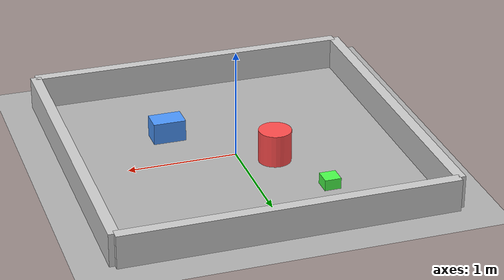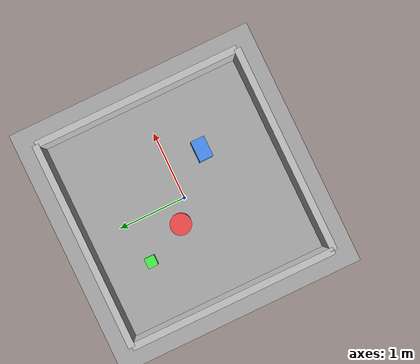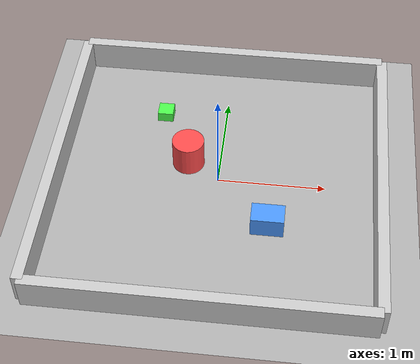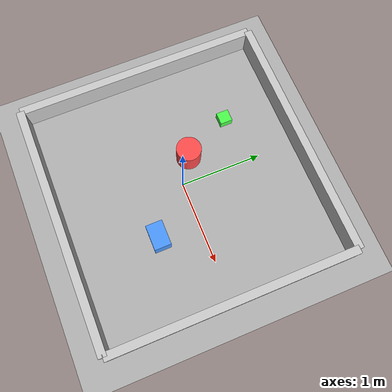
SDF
<?xml version="1.0"?>
<sdf version="1.6">
  <world name="room_world">

    <!-- ================ 光照 ================ -->
    <include>
      <uri>model://sun</uri>
    </include>

    <!-- ================ 地面 ================ -->
    <model name="ground_plane">
      <static>true</static>
      <link name="link">
        <collision name="collision">
          <geometry>
            <plane>
              <normal>0 0 1</normal>
              <size>5 5</size>
            </plane>
          </geometry>
          <surface>
            <friction>
              <ode>
                <mu>1.0</mu>
                <mu2>1.0</mu2>
              </ode>
            </friction>
          </surface>
        </collision>
        <visual name="visual">
          <geometry>
            <plane>
              <normal>0 0 1</normal>
              <size>5 5</size>
            </plane>
          </geometry>
          <material>
            <ambient>0.4 0.4 0.4 1</ambient>
            <diffuse>0.7 0.7 0.7 1</diffuse>
            <specular>0.1 0.1 0.1 1</specular>
          </material>
        </visual>
      </link>
    </model>

    <!-- ==================== 四周墙壁 ==================== -->
    <!-- 后墙 y=-1.5 -->
    <model name="wall_back">
      <static>true</static>
      <pose>0 -1.5 0.15 0 0 0</pose>
      <link name="link">
        <collision name="collision">
          <geometry>
            <box>
              <size>3.0 0.1 0.3</size>
            </box>
          </geometry>
        </collision>
        <visual name="visual">
          <geometry>
            <box>
              <size>3.0 0.1 0.3</size>
            </box>
          </geometry>
          <material>
            <ambient>0.6 0.6 0.6 1</ambient>
            <diffuse>0.8 0.8 0.8 1</diffuse>
          </material>
        </visual>
      </link>
    </model>

    <!-- 前墙 y=1.5 -->
    <model name="wall_front">
      <static>true</static>
      <pose>0 1.5 0.15 0 0 0</pose>
      <link name="link">
        <collision name="collision">
          <geometry>
            <box>
              <size>3.0 0.1 0.3</size>
            </box>
          </geometry>
        </collision>
        <visual name="visual">
          <geometry>
            <box>
              <size>3.0 0.1 0.3</size>
            </box>
          </geometry>
          <material>
            <ambient>0.6 0.6 0.6 1</ambient>
            <diffuse>0.8 0.8 0.8 1</diffuse>
          </material>
        </visual>
      </link>
    </model>

    <!-- 左墙 x=-1.5 -->
    <model name="wall_left">
      <static>true</static>
      <pose>-1.5 0 0.15 0 0 0</pose>
      <link name="link">
        <collision name="collision">
          <geometry>
            <box>
              <size>0.1 3.0 0.3</size>
            </box>
          </geometry>
        </collision>
        <visual name="visual">
          <geometry>
            <box>
              <size>0.1 3.0 0.3</size>
            </box>
          </geometry>
          <material>
            <ambient>0.6 0.6 0.6 1</ambient>
            <diffuse>0.8 0.8 0.8 1</diffuse>
          </material>
        </visual>
      </link>
    </model>

    <!-- 右墙 x=1.5 -->
    <model name="wall_right">
      <static>true</static>
      <pose>1.5 0 0.15 0 0 0</pose>
      <link name="link">
        <collision name="collision">
          <geometry>
            <box>
              <size>0.1 3.0 0.3</size>
            </box>
          </geometry>
        </collision>
        <visual name="visual">
          <geometry>
            <box>
              <size>0.1 3.0 0.3</size>
            </box>
          </geometry>
          <material>
            <ambient>0.6 0.6 0.6 1</ambient>
            <diffuse>0.8 0.8 0.8 1</diffuse>
          </material>
        </visual>
      </link>
    </model>

    <!-- ==================== 障碍物 ==================== -->
    <!-- 障碍物1：圆柱体（模拟桶/柱子），位于房间中央偏左 -->
    <model name="obstacle_cylinder">
      <static>true</static>
      <pose>-0.3 0.2 0.15 0 0 0</pose>
      <link name="link">
        <collision name="collision">
          <geometry>
            <cylinder>
              <radius>0.15</radius>
              <length>0.3</length>
            </cylinder>
          </geometry>
          <surface>
            <friction>
              <ode>
                <mu>0.8</mu>
                <mu2>0.8</mu2>
              </ode>
            </friction>
          </surface>
        </collision>
        <visual name="visual">
          <geometry>
            <cylinder>
              <radius>0.15</radius>
              <length>0.3</length>
            </cylinder>
          </geometry>
          <material>
            <ambient>0.8 0.2 0.2 1</ambient>
            <diffuse>1.0 0.3 0.3 1</diffuse>
          </material>
        </visual>
      </link>
    </model>

    <!-- 障碍物2：长方体（模拟箱子），位于房间右侧 -->
    <model name="obstacle_box">
      <static>true</static>
      <pose>0.5 -0.5 0.1 0 0 0</pose>
      <link name="link">
        <collision name="collision">
          <geometry>
            <box>
              <size>0.3 0.2 0.2</size>
            </box>
          </geometry>
          <surface>
            <friction>
              <ode>
                <mu>0.8</mu>
                <mu2>0.8</mu2>
              </ode>
            </friction>
          </surface>
        </collision>
        <visual name="visual">
          <geometry>
            <box>
              <size>0.3 0.2 0.2</size>
            </box>
          </geometry>
          <material>
            <ambient>0.2 0.5 0.8 1</ambient>
            <diffuse>0.3 0.6 1.0 1</diffuse>
          </material>
        </visual>
      </link>
    </model>

    <!-- 障碍物3：小方块（模拟路障），位于房间前方 -->
    <model name="obstacle_small_box">
      <static>true</static>
      <pose>-0.6 0.8 0.05 0 0 0</pose>
      <link name="link">
        <collision name="collision">
          <geometry>
            <box>
              <size>0.15 0.15 0.1</size>
            </box>
          </geometry>
          <surface>
            <friction>
              <ode>
                <mu>0.8</mu>
                <mu2>0.8</mu2>
              </ode>
            </friction>
          </surface>
        </collision>
        <visual name="visual">
          <geometry>
            <box>
              <size>0.15 0.15 0.1</size>
            </box>
          </geometry>
          <material>
            <ambient>0.2 0.8 0.2 1</ambient>
            <diffuse>0.3 1.0 0.3 1</diffuse>
          </material>
        </visual>
      </link>
    </model>

  </world>
</sdf>
